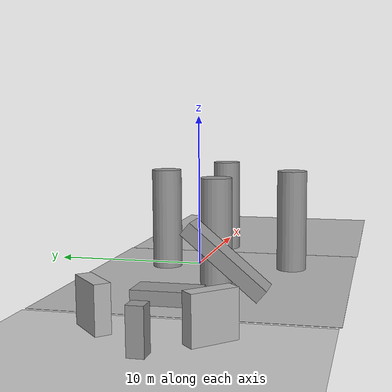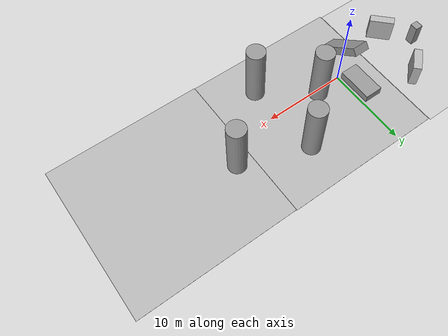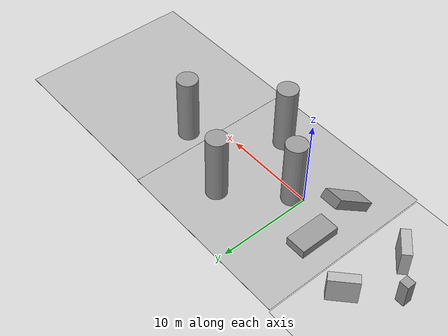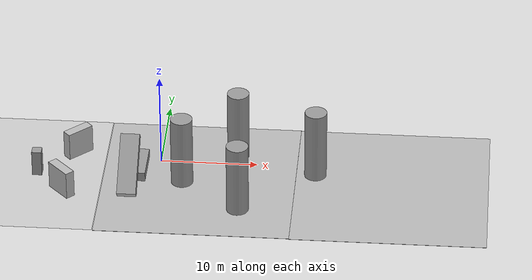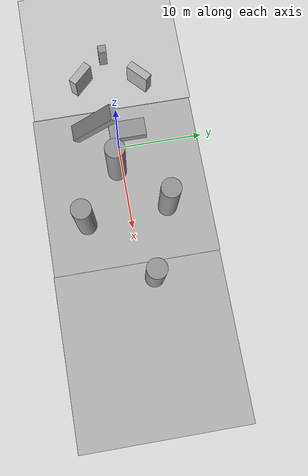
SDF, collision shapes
<?xml version='1.0'?>
<sdf version='1.6'>
  <model name='ground20x60_obstacle'>
    <link name='link_0'>
      <inertial>
        <mass>2.7871</mass>
        <inertia>
          <ixx>2.03641</ixx>
          <ixy>0</ixy>
          <ixz>0</ixz>
          <iyy>2.03641</iyy>
          <iyz>0</iyz>
          <izz>0.464516</izz>
        </inertia>
        <pose frame=''>0 0 0 0 -0 0</pose>
      </inertial>
      <pose frame=''>-12.9566 -0.044045 -0.63655 0 -0 0</pose>
      <visual name='visual'>
        <pose frame=''>0 0 0 0 -0 0</pose>
        <geometry>
          <box>
            <size>1 1 2.78709</size>
          </box>
        </geometry>
        <material>
          <lighting>1</lighting>
          <script>
            <uri>file://media/materials/scripts/gazebo.material</uri>
            <name>Gazebo/Grey</name>
          </script>
          <shader type='pixel'/>
        </material>
        <transparency>0</transparency>
        <cast_shadows>1</cast_shadows>
      </visual>
      <collision name='collision'>
        <laser_retro>0</laser_retro>
        <max_contacts>10</max_contacts>
        <pose frame=''>0 0 0 0 -0 0</pose>
        <geometry>
          <box>
            <size>1 1 2.78709</size>
          </box>
        </geometry>
        <surface>
          <friction>
            <ode>
              <mu>1</mu>
              <mu2>1</mu2>
              <fdir1>0 0 0</fdir1>
              <slip1>0</slip1>
              <slip2>0</slip2>
            </ode>
            <torsional>
              <coefficient>1</coefficient>
              <patch_radius>0</patch_radius>
              <surface_radius>0</surface_radius>
              <use_patch_radius>1</use_patch_radius>
              <ode>
                <slip>0</slip>
              </ode>
            </torsional>
          </friction>
          <bounce>
            <restitution_coefficient>0</restitution_coefficient>
            <threshold>1e+06</threshold>
          </bounce>
          <contact>
            <collide_without_contact>0</collide_without_contact>
            <collide_without_contact_bitmask>1</collide_without_contact_bitmask>
            <collide_bitmask>1</collide_bitmask>
            <ode>
              <soft_cfm>0</soft_cfm>
              <soft_erp>0.2</soft_erp>
              <kp>1e+13</kp>
              <kd>1</kd>
              <max_vel>0.01</max_vel>
              <min_depth>0</min_depth>
            </ode>
            <bullet>
              <split_impulse>1</split_impulse>
              <split_impulse_penetration_threshold>-0.01</split_impulse_penetration_threshold>
              <soft_cfm>0</soft_cfm>
              <soft_erp>0.2</soft_erp>
              <kp>1e+13</kp>
              <kd>1</kd>
            </bullet>
          </contact>
        </surface>
      </collision>
    </link>
    <link name='link_1'>
      <inertial>
        <mass>10.3165</mass>
        <inertia>
          <ixx>18.5059</ixx>
          <ixy>0</ixy>
          <ixz>0</ixz>
          <iyy>5.31741</iyy>
          <iyz>0</iyz>
          <izz>22.1039</izz>
        </inertia>
        <pose frame=''>0 0 0 0 -0 0</pose>
      </inertial>
      <pose frame=''>-2.77765 1.44573 -1.55903 0 -0 0</pose>
      <visual name='visual'>
        <pose frame=''>0 0 0 0 -0 0</pose>
        <geometry>
          <box>
            <size>2.27709 4.53055 1</size>
          </box>
        </geometry>
        <material>
          <lighting>1</lighting>
          <script>
            <uri>file://media/materials/scripts/gazebo.material</uri>
            <name>Gazebo/Grey</name>
          </script>
          <shader type='pixel'/>
        </material>
        <transparency>0</transparency>
        <cast_shadows>1</cast_shadows>
      </visual>
      <collision name='collision'>
        <laser_retro>0</laser_retro>
        <max_contacts>10</max_contacts>
        <pose frame=''>0 0 0 0 -0 0</pose>
        <geometry>
          <box>
            <size>2.27709 4.53055 1</size>
          </box>
        </geometry>
        <surface>
          <friction>
            <ode>
              <mu>1</mu>
              <mu2>1</mu2>
              <fdir1>0 0 0</fdir1>
              <slip1>0</slip1>
              <slip2>0</slip2>
            </ode>
            <torsional>
              <coefficient>1</coefficient>
              <patch_radius>0</patch_radius>
              <surface_radius>0</surface_radius>
              <use_patch_radius>1</use_patch_radius>
              <ode>
                <slip>0</slip>
              </ode>
            </torsional>
          </friction>
          <bounce>
            <restitution_coefficient>0</restitution_coefficient>
            <threshold>1e+06</threshold>
          </bounce>
          <contact>
            <collide_without_contact>0</collide_without_contact>
            <collide_without_contact_bitmask>1</collide_without_contact_bitmask>
            <collide_bitmask>1</collide_bitmask>
            <ode>
              <soft_cfm>0</soft_cfm>
              <soft_erp>0.2</soft_erp>
              <kp>1e+13</kp>
              <kd>1</kd>
              <max_vel>0.01</max_vel>
              <min_depth>0</min_depth>
            </ode>
            <bullet>
              <split_impulse>1</split_impulse>
              <split_impulse_penetration_threshold>-0.01</split_impulse_penetration_threshold>
              <soft_cfm>0</soft_cfm>
              <soft_erp>0.2</soft_erp>
              <kp>1e+13</kp>
              <kd>1</kd>
            </bullet>
          </contact>
        </surface>
      </collision>
    </link>
    <link name='link_2'>
      <inertial>
        <mass>12.7342</mass>
        <inertia>
          <ixx>45.0262</ixx>
          <ixy>0</ixy>
          <ixz>0</ixz>
          <iyy>48.1186</iyy>
          <iyz>0</iyz>
          <izz>5.21473</izz>
        </inertia>
        <pose frame=''>0 0 0 0 -0 0</pose>
      </inertial>
      <pose frame=''>-3.11307 -2.52892 1.01953 -0.867374 0 0</pose>
      <visual name='visual'>
        <pose frame=''>0 0 0 0 -0 0</pose>
        <geometry>
          <box>
            <size>1.9784 1 6.43663</size>
          </box>
        </geometry>
        <material>
          <lighting>1</lighting>
          <script>
            <uri>file://media/materials/scripts/gazebo.material</uri>
            <name>Gazebo/Grey</name>
          </script>
          <shader type='pixel'/>
        </material>
        <transparency>0</transparency>
        <cast_shadows>1</cast_shadows>
      </visual>
      <collision name='collision'>
        <laser_retro>0</laser_retro>
        <max_contacts>10</max_contacts>
        <pose frame=''>0 0 0 0 -0 0</pose>
        <geometry>
          <box>
            <size>1.9784 1 6.43663</size>
          </box>
        </geometry>
        <surface>
          <friction>
            <ode>
              <mu>1</mu>
              <mu2>1</mu2>
              <fdir1>0 0 0</fdir1>
              <slip1>0</slip1>
              <slip2>0</slip2>
            </ode>
            <torsional>
              <coefficient>1</coefficient>
              <patch_radius>0</patch_radius>
              <surface_radius>0</surface_radius>
              <use_patch_radius>1</use_patch_radius>
              <ode>
                <slip>0</slip>
              </ode>
            </torsional>
          </friction>
          <bounce>
            <restitution_coefficient>0</restitution_coefficient>
            <threshold>1e+06</threshold>
          </bounce>
          <contact>
            <collide_without_contact>0</collide_without_contact>
            <collide_without_contact_bitmask>1</collide_without_contact_bitmask>
            <collide_bitmask>1</collide_bitmask>
            <ode>
              <soft_cfm>0</soft_cfm>
              <soft_erp>0.2</soft_erp>
              <kp>1e+13</kp>
              <kd>1</kd>
              <max_vel>0.01</max_vel>
              <min_depth>0</min_depth>
            </ode>
            <bullet>
              <split_impulse>1</split_impulse>
              <split_impulse_penetration_threshold>-0.01</split_impulse_penetration_threshold>
              <soft_cfm>0</soft_cfm>
              <soft_erp>0.2</soft_erp>
              <kp>1e+13</kp>
              <kd>1</kd>
            </bullet>
          </contact>
        </surface>
      </collision>
    </link>
    <link name='link_3'>
      <inertial>
        <mass>40.4664</mass>
        <inertia>
          <ixx>214.165</ixx>
          <ixy>0</ixy>
          <ixz>0</ixz>
          <iyy>214.165</iyy>
          <iyz>0</iyz>
          <izz>26.5228</izz>
        </inertia>
        <pose frame=''>0 0 0 0 -0 0</pose>
      </inertial>
      <pose frame=''>7.64299 4.64235 1.83828 0 -0 0</pose>
      <visual name='visual'>
        <pose frame=''>0 0 0 0 -0 0</pose>
        <geometry>
          <cylinder>
            <radius>1.14493</radius>
            <length>7.71857</length>
          </cylinder>
        </geometry>
        <material>
          <lighting>1</lighting>
          <script>
            <uri>file://media/materials/scripts/gazebo.material</uri>
            <name>Gazebo/Grey</name>
          </script>
          <shader type='pixel'/>
        </material>
        <transparency>0</transparency>
        <cast_shadows>1</cast_shadows>
      </visual>
      <collision name='collision'>
        <laser_retro>0</laser_retro>
        <max_contacts>10</max_contacts>
        <pose frame=''>0 0 0 0 -0 0</pose>
        <geometry>
          <cylinder>
            <radius>1.14493</radius>
            <length>7.71857</length>
          </cylinder>
        </geometry>
        <surface>
          <friction>
            <ode>
              <mu>1</mu>
              <mu2>1</mu2>
              <fdir1>0 0 0</fdir1>
              <slip1>0</slip1>
              <slip2>0</slip2>
            </ode>
            <torsional>
              <coefficient>1</coefficient>
              <patch_radius>0</patch_radius>
              <surface_radius>0</surface_radius>
              <use_patch_radius>1</use_patch_radius>
              <ode>
                <slip>0</slip>
              </ode>
            </torsional>
          </friction>
          <bounce>
            <restitution_coefficient>0</restitution_coefficient>
            <threshold>1e+06</threshold>
          </bounce>
          <contact>
            <collide_without_contact>0</collide_without_contact>
            <collide_without_contact_bitmask>1</collide_without_contact_bitmask>
            <collide_bitmask>1</collide_bitmask>
            <ode>
              <soft_cfm>0</soft_cfm>
              <soft_erp>0.2</soft_erp>
              <kp>1e+13</kp>
              <kd>1</kd>
              <max_vel>0.01</max_vel>
              <min_depth>0</min_depth>
            </ode>
            <bullet>
              <split_impulse>1</split_impulse>
              <split_impulse_penetration_threshold>-0.01</split_impulse_penetration_threshold>
              <soft_cfm>0</soft_cfm>
              <soft_erp>0.2</soft_erp>
              <kp>1e+13</kp>
              <kd>1</kd>
            </bullet>
          </contact>
        </surface>
      </collision>
    </link>
    <link name='link_3_clone'>
      <inertial>
        <mass>40.4664</mass>
        <inertia>
          <ixx>214.165</ixx>
          <ixy>0</ixy>
          <ixz>0</ixz>
          <iyy>214.165</iyy>
          <iyz>0</iyz>
          <izz>26.5228</izz>
        </inertia>
        <pose frame=''>0 0 0 0 -0 0</pose>
      </inertial>
      <pose frame=''>2.20638 -0.629207 1.83829 0 -0 0</pose>
      <visual name='visual'>
        <pose frame=''>0 0 0 0 -0 0</pose>
        <geometry>
          <cylinder>
            <radius>1.14493</radius>
            <length>7.71857</length>
          </cylinder>
        </geometry>
        <material>
          <lighting>1</lighting>
          <script>
            <uri>file://media/materials/scripts/gazebo.material</uri>
            <name>Gazebo/Grey</name>
          </script>
          <shader type='pixel'/>
        </material>
        <transparency>0</transparency>
        <cast_shadows>1</cast_shadows>
      </visual>
      <collision name='collision'>
        <laser_retro>0</laser_retro>
        <max_contacts>10</max_contacts>
        <pose frame=''>0 0 0 0 -0 0</pose>
        <geometry>
          <cylinder>
            <radius>1.14493</radius>
            <length>7.71857</length>
          </cylinder>
        </geometry>
        <surface>
          <friction>
            <ode>
              <mu>1</mu>
              <mu2>1</mu2>
              <fdir1>0 0 0</fdir1>
              <slip1>0</slip1>
              <slip2>0</slip2>
            </ode>
            <torsional>
              <coefficient>1</coefficient>
              <patch_radius>0</patch_radius>
              <surface_radius>0</surface_radius>
              <use_patch_radius>1</use_patch_radius>
              <ode>
                <slip>0</slip>
              </ode>
            </torsional>
          </friction>
          <bounce>
            <restitution_coefficient>0</restitution_coefficient>
            <threshold>1e+06</threshold>
          </bounce>
          <contact>
            <collide_without_contact>0</collide_without_contact>
            <collide_without_contact_bitmask>1</collide_without_contact_bitmask>
            <collide_bitmask>1</collide_bitmask>
            <ode>
              <soft_cfm>0</soft_cfm>
              <soft_erp>0.2</soft_erp>
              <kp>1e+13</kp>
              <kd>1</kd>
              <max_vel>0.01</max_vel>
              <min_depth>0</min_depth>
            </ode>
            <bullet>
              <split_impulse>1</split_impulse>
              <split_impulse_penetration_threshold>-0.01</split_impulse_penetration_threshold>
              <soft_cfm>0</soft_cfm>
              <soft_erp>0.2</soft_erp>
              <kp>1e+13</kp>
              <kd>1</kd>
            </bullet>
          </contact>
        </surface>
      </collision>
    </link>
    <link name='link_3_clone_0'>
      <inertial>
        <mass>40.4664</mass>
        <inertia>
          <ixx>214.165</ixx>
          <ixy>0</ixy>
          <ixz>0</ixz>
          <iyy>214.165</iyy>
          <iyz>0</iyz>
          <izz>26.5228</izz>
        </inertia>
        <pose frame=''>0 0 0 0 -0 0</pose>
      </inertial>
      <pose frame=''>8.3411 -5.23895 1.83829 0 -0 0</pose>
      <gravity>1</gravity>
      <self_collide>0</self_collide>
      <kinematic>0</kinematic>
      <enable_wind>0</enable_wind>
      <visual name='visual'>
        <pose frame=''>0 0 0 0 -0 0</pose>
        <geometry>
          <cylinder>
            <radius>1.14493</radius>
            <length>7.71857</length>
          </cylinder>
        </geometry>
        <material>
          <lighting>1</lighting>
          <script>
            <uri>file://media/materials/scripts/gazebo.material</uri>
            <name>Gazebo/Grey</name>
          </script>
          <shader type='pixel'>
            <normal_map>__default__</normal_map>
          </shader>
        </material>
        <transparency>0</transparency>
        <cast_shadows>1</cast_shadows>
      </visual>
      <collision name='collision'>
        <laser_retro>0</laser_retro>
        <max_contacts>10</max_contacts>
        <pose frame=''>0 0 0 0 -0 0</pose>
        <geometry>
          <cylinder>
            <radius>1.14493</radius>
            <length>7.71857</length>
          </cylinder>
        </geometry>
        <surface>
          <friction>
            <ode>
              <mu>1</mu>
              <mu2>1</mu2>
              <fdir1>0 0 0</fdir1>
              <slip1>0</slip1>
              <slip2>0</slip2>
            </ode>
            <torsional>
              <coefficient>1</coefficient>
              <patch_radius>0</patch_radius>
              <surface_radius>0</surface_radius>
              <use_patch_radius>1</use_patch_radius>
              <ode>
                <slip>0</slip>
              </ode>
            </torsional>
          </friction>
          <bounce>
            <restitution_coefficient>0</restitution_coefficient>
            <threshold>1e+06</threshold>
          </bounce>
          <contact>
            <collide_without_contact>0</collide_without_contact>
            <collide_without_contact_bitmask>1</collide_without_contact_bitmask>
            <collide_bitmask>1</collide_bitmask>
            <ode>
              <soft_cfm>0</soft_cfm>
              <soft_erp>0.2</soft_erp>
              <kp>1e+13</kp>
              <kd>1</kd>
              <max_vel>0.01</max_vel>
              <min_depth>0</min_depth>
            </ode>
            <bullet>
              <split_impulse>1</split_impulse>
              <split_impulse_penetration_threshold>-0.01</split_impulse_penetration_threshold>
              <soft_cfm>0</soft_cfm>
              <soft_erp>0.2</soft_erp>
              <kp>1e+13</kp>
              <kd>1</kd>
            </bullet>
          </contact>
        </surface>
      </collision>
    </link>
    <link name='link_3_clone_1'>
      <inertial>
        <mass>40.4664</mass>
        <inertia>
          <ixx>214.165</ixx>
          <ixy>0</ixy>
          <ixz>0</ixz>
          <iyy>214.165</iyy>
          <iyz>0</iyz>
          <izz>26.5228</izz>
        </inertia>
        <pose frame=''>0 0 0 0 -0 0</pose>
      </inertial>
      <pose frame=''>15.9236 1.60988 1.83829 0 -0 0</pose>
      <visual name='visual'>
        <pose frame=''>0 0 0 0 -0 0</pose>
        <geometry>
          <cylinder>
            <radius>1.14493</radius>
            <length>7.71857</length>
          </cylinder>
        </geometry>
        <material>
          <lighting>1</lighting>
          <script>
            <uri>file://media/materials/scripts/gazebo.material</uri>
            <name>Gazebo/Grey</name>
          </script>
          <shader type='pixel'/>
        </material>
        <transparency>0</transparency>
        <cast_shadows>1</cast_shadows>
      </visual>
      <collision name='collision'>
        <laser_retro>0</laser_retro>
        <max_contacts>10</max_contacts>
        <pose frame=''>0 0 0 0 -0 0</pose>
        <geometry>
          <cylinder>
            <radius>1.14493</radius>
            <length>7.71857</length>
          </cylinder>
        </geometry>
        <surface>
          <friction>
            <ode>
              <mu>1</mu>
              <mu2>1</mu2>
              <fdir1>0 0 0</fdir1>
              <slip1>0</slip1>
              <slip2>0</slip2>
            </ode>
            <torsional>
              <coefficient>1</coefficient>
              <patch_radius>0</patch_radius>
              <surface_radius>0</surface_radius>
              <use_patch_radius>1</use_patch_radius>
              <ode>
                <slip>0</slip>
              </ode>
            </torsional>
          </friction>
          <bounce>
            <restitution_coefficient>0</restitution_coefficient>
            <threshold>1e+06</threshold>
          </bounce>
          <contact>
            <collide_without_contact>0</collide_without_contact>
            <collide_without_contact_bitmask>1</collide_without_contact_bitmask>
            <collide_bitmask>1</collide_bitmask>
            <ode>
              <soft_cfm>0</soft_cfm>
              <soft_erp>0.2</soft_erp>
              <kp>1e+13</kp>
              <kd>1</kd>
              <max_vel>0.01</max_vel>
              <min_depth>0</min_depth>
            </ode>
            <bullet>
              <split_impulse>1</split_impulse>
              <split_impulse_penetration_threshold>-0.01</split_impulse_penetration_threshold>
              <soft_cfm>0</soft_cfm>
              <soft_erp>0.2</soft_erp>
              <kp>1e+13</kp>
              <kd>1</kd>
            </bullet>
          </contact>
        </surface>
      </collision>
    </link>
    <model name='ground20x60'>
      <model name='my_ground_plane'>
        <static>1</static>
        <link name='link'>
          <collision name='collision'>
            <geometry>
              <plane>
                <normal>0 0 1</normal>
                <size>20 20</size>
              </plane>
            </geometry>
            <surface>
              <friction>
                <ode>
                  <mu>100</mu>
                  <mu2>50</mu2>
                </ode>
              </friction>
            </surface>
          </collision>
          <visual name='visual'>
            <cast_shadows>0</cast_shadows>
            <geometry>
              <plane>
                <normal>0 0 1</normal>
                <size>20 20</size>
              </plane>
            </geometry>
            <material>
              <script>
                <uri>model://ground20x20/materials/scripts</uri>
                <uri>model://ground20x20/materials/textures</uri>
                <name>WoodGround/Image</name>
              </script>
            </material>
          </visual>
        </link>
        <pose frame=''>-20.0603 0.142959 0 0 -0 0</pose>
      </model>
      <model name='my_ground_plane_0'>
        <static>1</static>
        <link name='link'>
          <collision name='collision'>
            <geometry>
              <plane>
                <normal>0 0 1</normal>
                <size>20 20</size>
              </plane>
            </geometry>
            <surface>
              <friction>
                <ode>
                  <mu>100</mu>
                  <mu2>50</mu2>
                </ode>
              </friction>
            </surface>
          </collision>
          <visual name='visual'>
            <cast_shadows>0</cast_shadows>
            <geometry>
              <plane>
                <normal>0 0 1</normal>
                <size>20 20</size>
              </plane>
            </geometry>
            <material>
              <script>
                <uri>model://ground20x20/materials/scripts</uri>
                <uri>model://ground20x20/materials/textures</uri>
                <name>WoodGround/Image</name>
              </script>
            </material>
          </visual>
        </link>
        <pose frame=''>0.026452 -0.032681 0 0 -0 0</pose>
      </model>
      <model name='my_ground_plane_1'>
        <static>1</static>
        <link name='link'>
          <collision name='collision'>
            <geometry>
              <plane>
                <normal>0 0 1</normal>
                <size>20 20</size>
              </plane>
            </geometry>
            <surface>
              <friction>
                <ode>
                  <mu>100</mu>
                  <mu2>50</mu2>
                </ode>
              </friction>
            </surface>
          </collision>
          <visual name='visual'>
            <cast_shadows>0</cast_shadows>
            <geometry>
              <plane>
                <normal>0 0 1</normal>
                <size>20 20</size>
              </plane>
            </geometry>
            <material>
              <script>
                <uri>model://ground20x20/materials/scripts</uri>
                <uri>model://ground20x20/materials/textures</uri>
                <name>WoodGround/Image</name>
              </script>
            </material>
          </visual>
        </link>
        <pose frame=''>20.0339 -0.110278 0 0 -0 0</pose>
      </model>
      <static>0</static>
      <allow_auto_disable>1</allow_auto_disable>
      <pose frame=''>3.905 -0.056783 -2.05903 0 -0 0</pose>
    </model>
    <model name='brick_box_3x1x3'>
      <static>1</static>
      <link name='chassis'>
        <pose frame=''>0 0 1.5 0 -0 0</pose>
        <collision name='collision'>
          <geometry>
            <box>
              <size>3 1 3</size>
            </box>
          </geometry>
        </collision>
        <visual name='visual'>
          <geometry>
            <mesh>
              <uri>model://brick_box_3x1x3/meshes/simple_box.dae</uri>
              <scale>3 1 3</scale>
            </mesh>
          </geometry>
          <material>
            <script>
              <uri>model://brick_box_3x1x3/materials/scripts</uri>
              <uri>model://brick_box_3x1x3/materials/textures</uri>
              <name>BrickBox/Diffuse</name>
            </script>
          </material>
        </visual>
      </link>
      <pose frame=''>-9.14813 3.99229 -2.05903 0 -0 0.756114</pose>
    </model>
    <model name='brick_box_3x1x3_0'>
      <static>1</static>
      <link name='chassis'>
        <pose frame=''>0 0 1.5 0 -0 0</pose>
        <collision name='collision'>
          <geometry>
            <box>
              <size>3 1 3</size>
            </box>
          </geometry>
        </collision>
        <visual name='visual'>
          <geometry>
            <mesh>
              <uri>model://brick_box_3x1x3/meshes/simple_box.dae</uri>
              <scale>3 1 3</scale>
            </mesh>
          </geometry>
          <material>
            <script>
              <uri>model://brick_box_3x1x3/materials/scripts</uri>
              <uri>model://brick_box_3x1x3/materials/textures</uri>
              <name>BrickBox/Diffuse</name>
            </script>
          </material>
        </visual>
      </link>
      <pose frame=''>-10.0237 -3.19235 -2.05903 0 0 -0.804873</pose>
    </model>
    <static>0</static>
    <allow_auto_disable>1</allow_auto_disable>
  </model>
</sdf>
